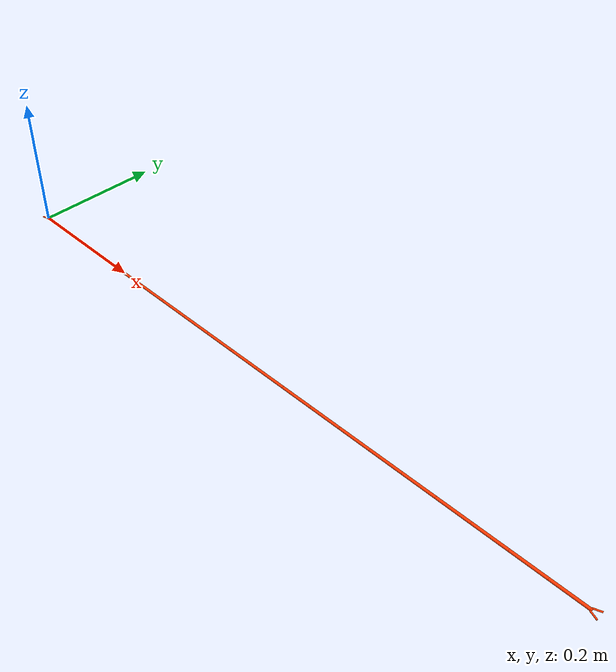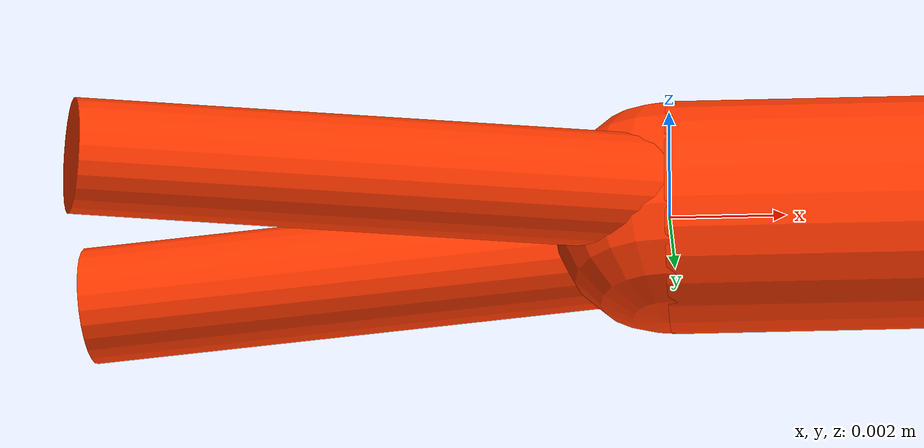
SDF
<?xml version="1.0" ?>
<!--
  THIS FILE IS AUTO-GENERATED FROM AN ERB TEMPLATE

  see instructions in 'path_to_ws/src/aic/aic_assets/scripts/cable.sdf.erb'
-->
<sdf version="1.9">
  <model name="cable">
    <link name="cable_end_0">
      <pose>0.000000 0.000000 0.000000 0.000000 -0.000000 0.000000</pose>
      <inertial>
        <pose>0.000000 0.000000 0.000000 0.000000 -0.000000 0.000000</pose>
        <mass>0.0025</mass>
        <inertia>
          <ixx>0.010000</ixx>
          <ixy>0.000000</ixy>
          <ixz>0.000000</ixz>
          <iyy>0.010000</iyy>
          <iyz>0.000000</iyz>
          <izz>0.010000</izz>
        </inertia>
      </inertial>
      <collision name="base_collision">
        <pose>0.000000 0.000000 0.000000 0.000000 0.000000 0.000000</pose>
        <geometry>
          <sphere>
            <radius>0.002</radius>
          </sphere>
        </geometry>
      </collision>
      <visual name="base_vis">
        <pose>0.000000 0.000000 0.000000 0.000000 0.000000 0.000000</pose>
        <geometry>
          <sphere>
            <radius>0.002</radius>
          </sphere>
        </geometry>
        <material>
          <diffuse>1.0 0.22 0.0</diffuse>
          <specular>0.5 0.5 0.5</specular>
          <pbr>
            <metal>
              <roughness>0.01</roughness>
              <metalness>0.01</metalness>
            </metal>
          </pbr>
        </material>
      </visual>
    </link>
    <joint name="joint_end_0" type="ball">
      <pose>0.00000 0.000000 -0.024 0.000000 0 0.000000</pose>
      <child>link_1</child>
      <parent>cable_end_0</parent>
      <axis>
        <dynamics>
          <damping>1.0</damping>
          <spring_stiffness>0.05</spring_stiffness>
        </dynamics>
      </axis>
    </joint>
    <link name="link_1">
      <pose>0.024 0.000000 0.000000 0.000000 1.570790 0.000000</pose>
      <inertial>
        <pose>0.000000 0.000000 0.000000 0.000000 -0.000000 0.000000</pose>
        <mass>0.0025</mass>
        <inertia>
          <ixx>0.010000</ixx>
          <ixy>0.000000</ixy>
          <ixz>0.000000</ixz>
          <iyy>0.010000</iyy>
          <iyz>0.000000</iyz>
          <izz>0.010000</izz>
        </inertia>
      </inertial>
      <collision name="link_1_collision">
        <pose>0.00000 0.000000 0.000000 0.000000 0 0.000000</pose>
        <geometry>
          <cylinder>
            <length>0.048</length>
            <radius>0.002</radius>
          </cylinder>
        </geometry>
      </collision>
      <visual name="link_1_vis">
        <pose>0.00000 0.000000 0.000000 0.000000 0 0.000000</pose>
        <geometry>
          <cylinder>
            <length>0.048</length>
            <radius>0.002</radius>
          </cylinder>
        </geometry>
        <material>
          <diffuse>1.0 0.22 0.0</diffuse>
          <specular>0.5 0.5 0.5</specular>
          <pbr>
            <metal>
              <roughness>0.01</roughness>
              <metalness>0.01</metalness>
            </metal>
          </pbr>
        </material>
      </visual>
      <collision name="sphere_1_collision">
        <pose>0.000000 0.000000 0.024 0.000000 -0.000000 0.000000</pose>
        <geometry>
          <sphere>
            <radius>0.002</radius>
          </sphere>
        </geometry>
      </collision>
      <visual name="sphere_1_vis">
        <pose>0.000000 0.000000 0.024 0.000000 -0.000000 0.000000</pose>
        <geometry>
          <sphere>
            <radius>0.002</radius>
          </sphere>
        </geometry>
        <material>
          <diffuse>1.0 0.22 0.0</diffuse>
          <specular>0.5 0.5 0.5</specular>
          <pbr>
            <metal>
              <roughness>0.01</roughness>
              <metalness>0.01</metalness>
            </metal>
          </pbr>
        </material>
      </visual>
    </link>
    <link name="link_2">
      <pose>0.07200000000000001 0.000000 0.000000 0.000000 1.570790 0.000000</pose>
      <inertial>
        <pose>0.000000 0.000000 0.000000 0.000000 -0.000000 0.000000</pose>
        <mass>0.0025</mass>
        <inertia>
          <ixx>0.010000</ixx>
          <ixy>0.000000</ixy>
          <ixz>0.000000</ixz>
          <iyy>0.010000</iyy>
          <iyz>0.000000</iyz>
          <izz>0.010000</izz>
        </inertia>
      </inertial>
      <collision name="link_2_collision">
        <pose>0.00000 0.000000 0.000000 0.000000 0 0.000000</pose>
        <geometry>
          <cylinder>
            <length>0.048</length>
            <radius>0.002</radius>
          </cylinder>
        </geometry>
      </collision>
      <visual name="link_2_vis">
        <pose>0.00000 0.000000 0.000000 0.000000 0 0.000000</pose>
        <geometry>
          <cylinder>
            <length>0.048</length>
            <radius>0.002</radius>
          </cylinder>
        </geometry>
        <material>
          <diffuse>1.0 0.22 0.0</diffuse>
          <specular>0.5 0.5 0.5</specular>
          <pbr>
            <metal>
              <roughness>0.01</roughness>
              <metalness>0.01</metalness>
            </metal>
          </pbr>
        </material>
      </visual>
      <collision name="sphere_2_collision">
        <pose>0.000000 0.000000 0.024 0.000000 -0.000000 0.000000</pose>
        <geometry>
          <sphere>
            <radius>0.002</radius>
          </sphere>
        </geometry>
      </collision>
      <visual name="sphere_2_vis">
        <pose>0.000000 0.000000 0.024 0.000000 -0.000000 0.000000</pose>
        <geometry>
          <sphere>
            <radius>0.002</radius>
          </sphere>
        </geometry>
        <material>
          <diffuse>1.0 0.22 0.0</diffuse>
          <specular>0.5 0.5 0.5</specular>
          <pbr>
            <metal>
              <roughness>0.01</roughness>
              <metalness>0.01</metalness>
            </metal>
          </pbr>
        </material>
      </visual>
    </link>
    <link name="link_3">
      <pose>0.12 0.000000 0.000000 0.000000 1.570790 0.000000</pose>
      <inertial>
        <pose>0.000000 0.000000 0.000000 0.000000 -0.000000 0.000000</pose>
        <mass>0.0025</mass>
        <inertia>
          <ixx>0.010000</ixx>
          <ixy>0.000000</ixy>
          <ixz>0.000000</ixz>
          <iyy>0.010000</iyy>
          <iyz>0.000000</iyz>
          <izz>0.010000</izz>
        </inertia>
      </inertial>
      <collision name="link_3_collision">
        <pose>0.00000 0.000000 0.000000 0.000000 0 0.000000</pose>
        <geometry>
          <cylinder>
            <length>0.048</length>
            <radius>0.002</radius>
          </cylinder>
        </geometry>
      </collision>
      <visual name="link_3_vis">
        <pose>0.00000 0.000000 0.000000 0.000000 0 0.000000</pose>
        <geometry>
          <cylinder>
            <length>0.048</length>
            <radius>0.002</radius>
          </cylinder>
        </geometry>
        <material>
          <diffuse>1.0 0.22 0.0</diffuse>
          <specular>0.5 0.5 0.5</specular>
          <pbr>
            <metal>
              <roughness>0.01</roughness>
              <metalness>0.01</metalness>
            </metal>
          </pbr>
        </material>
      </visual>
      <collision name="sphere_3_collision">
        <pose>0.000000 0.000000 0.024 0.000000 -0.000000 0.000000</pose>
        <geometry>
          <sphere>
            <radius>0.002</radius>
          </sphere>
        </geometry>
      </collision>
      <visual name="sphere_3_vis">
        <pose>0.000000 0.000000 0.024 0.000000 -0.000000 0.000000</pose>
        <geometry>
          <sphere>
            <radius>0.002</radius>
          </sphere>
        </geometry>
        <material>
          <diffuse>1.0 0.22 0.0</diffuse>
          <specular>0.5 0.5 0.5</specular>
          <pbr>
            <metal>
              <roughness>0.01</roughness>
              <metalness>0.01</metalness>
            </metal>
          </pbr>
        </material>
      </visual>
    </link>
    <link name="link_4">
      <pose>0.168 0.000000 0.000000 0.000000 1.570790 0.000000</pose>
      <inertial>
        <pose>0.000000 0.000000 0.000000 0.000000 -0.000000 0.000000</pose>
        <mass>0.0025</mass>
        <inertia>
          <ixx>0.010000</ixx>
          <ixy>0.000000</ixy>
          <ixz>0.000000</ixz>
          <iyy>0.010000</iyy>
          <iyz>0.000000</iyz>
          <izz>0.010000</izz>
        </inertia>
      </inertial>
      <collision name="link_4_collision">
        <pose>0.00000 0.000000 0.000000 0.000000 0 0.000000</pose>
        <geometry>
          <cylinder>
            <length>0.048</length>
            <radius>0.002</radius>
          </cylinder>
        </geometry>
      </collision>
      <visual name="link_4_vis">
        <pose>0.00000 0.000000 0.000000 0.000000 0 0.000000</pose>
        <geometry>
          <cylinder>
            <length>0.048</length>
            <radius>0.002</radius>
          </cylinder>
        </geometry>
        <material>
          <diffuse>1.0 0.22 0.0</diffuse>
          <specular>0.5 0.5 0.5</specular>
          <pbr>
            <metal>
              <roughness>0.01</roughness>
              <metalness>0.01</metalness>
            </metal>
          </pbr>
        </material>
      </visual>
      <collision name="sphere_4_collision">
        <pose>0.000000 0.000000 0.024 0.000000 -0.000000 0.000000</pose>
        <geometry>
          <sphere>
            <radius>0.002</radius>
          </sphere>
        </geometry>
      </collision>
      <visual name="sphere_4_vis">
        <pose>0.000000 0.000000 0.024 0.000000 -0.000000 0.000000</pose>
        <geometry>
          <sphere>
            <radius>0.002</radius>
          </sphere>
        </geometry>
        <material>
          <diffuse>1.0 0.22 0.0</diffuse>
          <specular>0.5 0.5 0.5</specular>
          <pbr>
            <metal>
              <roughness>0.01</roughness>
              <metalness>0.01</metalness>
            </metal>
          </pbr>
        </material>
      </visual>
    </link>
    <link name="link_5">
      <pose>0.216 0.000000 0.000000 0.000000 1.570790 0.000000</pose>
      <inertial>
        <pose>0.000000 0.000000 0.000000 0.000000 -0.000000 0.000000</pose>
        <mass>0.0025</mass>
        <inertia>
          <ixx>0.010000</ixx>
          <ixy>0.000000</ixy>
          <ixz>0.000000</ixz>
          <iyy>0.010000</iyy>
          <iyz>0.000000</iyz>
          <izz>0.010000</izz>
        </inertia>
      </inertial>
      <collision name="link_5_collision">
        <pose>0.00000 0.000000 0.000000 0.000000 0 0.000000</pose>
        <geometry>
          <cylinder>
            <length>0.048</length>
            <radius>0.002</radius>
          </cylinder>
        </geometry>
      </collision>
      <visual name="link_5_vis">
        <pose>0.00000 0.000000 0.000000 0.000000 0 0.000000</pose>
        <geometry>
          <cylinder>
            <length>0.048</length>
            <radius>0.002</radius>
          </cylinder>
        </geometry>
        <material>
          <diffuse>1.0 0.22 0.0</diffuse>
          <specular>0.5 0.5 0.5</specular>
          <pbr>
            <metal>
              <roughness>0.01</roughness>
              <metalness>0.01</metalness>
            </metal>
          </pbr>
        </material>
      </visual>
      <collision name="sphere_5_collision">
        <pose>0.000000 0.000000 0.024 0.000000 -0.000000 0.000000</pose>
        <geometry>
          <sphere>
            <radius>0.002</radius>
          </sphere>
        </geometry>
      </collision>
      <visual name="sphere_5_vis">
        <pose>0.000000 0.000000 0.024 0.000000 -0.000000 0.000000</pose>
        <geometry>
          <sphere>
            <radius>0.002</radius>
          </sphere>
        </geometry>
        <material>
          <diffuse>1.0 0.22 0.0</diffuse>
          <specular>0.5 0.5 0.5</specular>
          <pbr>
            <metal>
              <roughness>0.01</roughness>
              <metalness>0.01</metalness>
            </metal>
          </pbr>
        </material>
      </visual>
    </link>
    <link name="link_6">
      <pose>0.264 0.000000 0.000000 0.000000 1.570790 0.000000</pose>
      <inertial>
        <pose>0.000000 0.000000 0.000000 0.000000 -0.000000 0.000000</pose>
        <mass>0.0025</mass>
        <inertia>
          <ixx>0.010000</ixx>
          <ixy>0.000000</ixy>
          <ixz>0.000000</ixz>
          <iyy>0.010000</iyy>
          <iyz>0.000000</iyz>
          <izz>0.010000</izz>
        </inertia>
      </inertial>
      <collision name="link_6_collision">
        <pose>0.00000 0.000000 0.000000 0.000000 0 0.000000</pose>
        <geometry>
          <cylinder>
            <length>0.048</length>
            <radius>0.002</radius>
          </cylinder>
        </geometry>
      </collision>
      <visual name="link_6_vis">
        <pose>0.00000 0.000000 0.000000 0.000000 0 0.000000</pose>
        <geometry>
          <cylinder>
            <length>0.048</length>
            <radius>0.002</radius>
          </cylinder>
        </geometry>
        <material>
          <diffuse>1.0 0.22 0.0</diffuse>
          <specular>0.5 0.5 0.5</specular>
          <pbr>
            <metal>
              <roughness>0.01</roughness>
              <metalness>0.01</metalness>
            </metal>
          </pbr>
        </material>
      </visual>
      <collision name="sphere_6_collision">
        <pose>0.000000 0.000000 0.024 0.000000 -0.000000 0.000000</pose>
        <geometry>
          <sphere>
            <radius>0.002</radius>
          </sphere>
        </geometry>
      </collision>
      <visual name="sphere_6_vis">
        <pose>0.000000 0.000000 0.024 0.000000 -0.000000 0.000000</pose>
        <geometry>
          <sphere>
            <radius>0.002</radius>
          </sphere>
        </geometry>
        <material>
          <diffuse>1.0 0.22 0.0</diffuse>
          <specular>0.5 0.5 0.5</specular>
          <pbr>
            <metal>
              <roughness>0.01</roughness>
              <metalness>0.01</metalness>
            </metal>
          </pbr>
        </material>
      </visual>
    </link>
    <link name="link_7">
      <pose>0.31200000000000006 0.000000 0.000000 0.000000 1.570790 0.000000</pose>
      <inertial>
        <pose>0.000000 0.000000 0.000000 0.000000 -0.000000 0.000000</pose>
        <mass>0.0025</mass>
        <inertia>
          <ixx>0.010000</ixx>
          <ixy>0.000000</ixy>
          <ixz>0.000000</ixz>
          <iyy>0.010000</iyy>
          <iyz>0.000000</iyz>
          <izz>0.010000</izz>
        </inertia>
      </inertial>
      <collision name="link_7_collision">
        <pose>0.00000 0.000000 0.000000 0.000000 0 0.000000</pose>
        <geometry>
          <cylinder>
            <length>0.048</length>
            <radius>0.002</radius>
          </cylinder>
        </geometry>
      </collision>
      <visual name="link_7_vis">
        <pose>0.00000 0.000000 0.000000 0.000000 0 0.000000</pose>
        <geometry>
          <cylinder>
            <length>0.048</length>
            <radius>0.002</radius>
          </cylinder>
        </geometry>
        <material>
          <diffuse>1.0 0.22 0.0</diffuse>
          <specular>0.5 0.5 0.5</specular>
          <pbr>
            <metal>
              <roughness>0.01</roughness>
              <metalness>0.01</metalness>
            </metal>
          </pbr>
        </material>
      </visual>
      <collision name="sphere_7_collision">
        <pose>0.000000 0.000000 0.024 0.000000 -0.000000 0.000000</pose>
        <geometry>
          <sphere>
            <radius>0.002</radius>
          </sphere>
        </geometry>
      </collision>
      <visual name="sphere_7_vis">
        <pose>0.000000 0.000000 0.024 0.000000 -0.000000 0.000000</pose>
        <geometry>
          <sphere>
            <radius>0.002</radius>
          </sphere>
        </geometry>
        <material>
          <diffuse>1.0 0.22 0.0</diffuse>
          <specular>0.5 0.5 0.5</specular>
          <pbr>
            <metal>
              <roughness>0.01</roughness>
              <metalness>0.01</metalness>
            </metal>
          </pbr>
        </material>
      </visual>
    </link>
    <link name="link_8">
      <pose>0.36000000000000004 0.000000 0.000000 0.000000 1.570790 0.000000</pose>
      <inertial>
        <pose>0.000000 0.000000 0.000000 0.000000 -0.000000 0.000000</pose>
        <mass>0.0025</mass>
        <inertia>
          <ixx>0.010000</ixx>
          <ixy>0.000000</ixy>
          <ixz>0.000000</ixz>
          <iyy>0.010000</iyy>
          <iyz>0.000000</iyz>
          <izz>0.010000</izz>
        </inertia>
      </inertial>
      <collision name="link_8_collision">
        <pose>0.00000 0.000000 0.000000 0.000000 0 0.000000</pose>
        <geometry>
          <cylinder>
            <length>0.048</length>
            <radius>0.002</radius>
          </cylinder>
        </geometry>
      </collision>
      <visual name="link_8_vis">
        <pose>0.00000 0.000000 0.000000 0.000000 0 0.000000</pose>
        <geometry>
          <cylinder>
            <length>0.048</length>
            <radius>0.002</radius>
          </cylinder>
        </geometry>
        <material>
          <diffuse>1.0 0.22 0.0</diffuse>
          <specular>0.5 0.5 0.5</specular>
          <pbr>
            <metal>
              <roughness>0.01</roughness>
              <metalness>0.01</metalness>
            </metal>
          </pbr>
        </material>
      </visual>
      <collision name="sphere_8_collision">
        <pose>0.000000 0.000000 0.024 0.000000 -0.000000 0.000000</pose>
        <geometry>
          <sphere>
            <radius>0.002</radius>
          </sphere>
        </geometry>
      </collision>
      <visual name="sphere_8_vis">
        <pose>0.000000 0.000000 0.024 0.000000 -0.000000 0.000000</pose>
        <geometry>
          <sphere>
            <radius>0.002</radius>
          </sphere>
        </geometry>
        <material>
          <diffuse>1.0 0.22 0.0</diffuse>
          <specular>0.5 0.5 0.5</specular>
          <pbr>
            <metal>
              <roughness>0.01</roughness>
              <metalness>0.01</metalness>
            </metal>
          </pbr>
        </material>
      </visual>
    </link>
    <link name="link_9">
      <pose>0.40800000000000003 0.000000 0.000000 0.000000 1.570790 0.000000</pose>
      <inertial>
        <pose>0.000000 0.000000 0.000000 0.000000 -0.000000 0.000000</pose>
        <mass>0.0025</mass>
        <inertia>
          <ixx>0.010000</ixx>
          <ixy>0.000000</ixy>
          <ixz>0.000000</ixz>
          <iyy>0.010000</iyy>
          <iyz>0.000000</iyz>
          <izz>0.010000</izz>
        </inertia>
      </inertial>
      <collision name="link_9_collision">
        <pose>0.00000 0.000000 0.000000 0.000000 0 0.000000</pose>
        <geometry>
          <cylinder>
            <length>0.048</length>
            <radius>0.002</radius>
          </cylinder>
        </geometry>
      </collision>
      <visual name="link_9_vis">
        <pose>0.00000 0.000000 0.000000 0.000000 0 0.000000</pose>
        <geometry>
          <cylinder>
            <length>0.048</length>
            <radius>0.002</radius>
          </cylinder>
        </geometry>
        <material>
          <diffuse>1.0 0.22 0.0</diffuse>
          <specular>0.5 0.5 0.5</specular>
          <pbr>
            <metal>
              <roughness>0.01</roughness>
              <metalness>0.01</metalness>
            </metal>
          </pbr>
        </material>
      </visual>
      <collision name="sphere_9_collision">
        <pose>0.000000 0.000000 0.024 0.000000 -0.000000 0.000000</pose>
        <geometry>
          <sphere>
            <radius>0.002</radius>
          </sphere>
        </geometry>
      </collision>
      <visual name="sphere_9_vis">
        <pose>0.000000 0.000000 0.024 0.000000 -0.000000 0.000000</pose>
        <geometry>
          <sphere>
            <radius>0.002</radius>
          </sphere>
        </geometry>
        <material>
          <diffuse>1.0 0.22 0.0</diffuse>
          <specular>0.5 0.5 0.5</specular>
          <pbr>
            <metal>
              <roughness>0.01</roughness>
              <metalness>0.01</metalness>
            </metal>
          </pbr>
        </material>
      </visual>
    </link>
    <link name="link_10">
      <pose>0.456 0.000000 0.000000 0.000000 1.570790 0.000000</pose>
      <inertial>
        <pose>0.000000 0.000000 0.000000 0.000000 -0.000000 0.000000</pose>
        <mass>0.0025</mass>
        <inertia>
          <ixx>0.010000</ixx>
          <ixy>0.000000</ixy>
          <ixz>0.000000</ixz>
          <iyy>0.010000</iyy>
          <iyz>0.000000</iyz>
          <izz>0.010000</izz>
        </inertia>
      </inertial>
      <collision name="link_10_collision">
        <pose>0.00000 0.000000 0.000000 0.000000 0 0.000000</pose>
        <geometry>
          <cylinder>
            <length>0.048</length>
            <radius>0.002</radius>
          </cylinder>
        </geometry>
      </collision>
      <visual name="link_10_vis">
        <pose>0.00000 0.000000 0.000000 0.000000 0 0.000000</pose>
        <geometry>
          <cylinder>
            <length>0.048</length>
            <radius>0.002</radius>
          </cylinder>
        </geometry>
        <material>
          <diffuse>1.0 0.22 0.0</diffuse>
          <specular>0.5 0.5 0.5</specular>
          <pbr>
            <metal>
              <roughness>0.01</roughness>
              <metalness>0.01</metalness>
            </metal>
          </pbr>
        </material>
      </visual>
      <collision name="sphere_10_collision">
        <pose>0.000000 0.000000 0.024 0.000000 -0.000000 0.000000</pose>
        <geometry>
          <sphere>
            <radius>0.002</radius>
          </sphere>
        </geometry>
      </collision>
      <visual name="sphere_10_vis">
        <pose>0.000000 0.000000 0.024 0.000000 -0.000000 0.000000</pose>
        <geometry>
          <sphere>
            <radius>0.002</radius>
          </sphere>
        </geometry>
        <material>
          <diffuse>1.0 0.22 0.0</diffuse>
          <specular>0.5 0.5 0.5</specular>
          <pbr>
            <metal>
              <roughness>0.01</roughness>
              <metalness>0.01</metalness>
            </metal>
          </pbr>
        </material>
      </visual>
    </link>
    <link name="link_11">
      <pose>0.504 0.000000 0.000000 0.000000 1.570790 0.000000</pose>
      <inertial>
        <pose>0.000000 0.000000 0.000000 0.000000 -0.000000 0.000000</pose>
        <mass>0.0025</mass>
        <inertia>
          <ixx>0.010000</ixx>
          <ixy>0.000000</ixy>
          <ixz>0.000000</ixz>
          <iyy>0.010000</iyy>
          <iyz>0.000000</iyz>
          <izz>0.010000</izz>
        </inertia>
      </inertial>
      <collision name="link_11_collision">
        <pose>0.00000 0.000000 0.000000 0.000000 0 0.000000</pose>
        <geometry>
          <cylinder>
            <length>0.048</length>
            <radius>0.002</radius>
          </cylinder>
        </geometry>
      </collision>
      <visual name="link_11_vis">
        <pose>0.00000 0.000000 0.000000 0.000000 0 0.000000</pose>
        <geometry>
          <cylinder>
            <length>0.048</length>
            <radius>0.002</radius>
          </cylinder>
        </geometry>
        <material>
          <diffuse>1.0 0.22 0.0</diffuse>
          <specular>0.5 0.5 0.5</specular>
          <pbr>
            <metal>
              <roughness>0.01</roughness>
              <metalness>0.01</metalness>
            </metal>
          </pbr>
        </material>
      </visual>
      <collision name="sphere_11_collision">
        <pose>0.000000 0.000000 0.024 0.000000 -0.000000 0.000000</pose>
        <geometry>
          <sphere>
            <radius>0.002</radius>
          </sphere>
        </geometry>
      </collision>
      <visual name="sphere_11_vis">
        <pose>0.000000 0.000000 0.024 0.000000 -0.000000 0.000000</pose>
        <geometry>
          <sphere>
            <radius>0.002</radius>
          </sphere>
        </geometry>
        <material>
          <diffuse>1.0 0.22 0.0</diffuse>
          <specular>0.5 0.5 0.5</specular>
          <pbr>
            <metal>
              <roughness>0.01</roughness>
              <metalness>0.01</metalness>
            </metal>
          </pbr>
        </material>
      </visual>
    </link>
    <link name="link_12">
      <pose>0.552 0.000000 0.000000 0.000000 1.570790 0.000000</pose>
      <inertial>
        <pose>0.000000 0.000000 0.000000 0.000000 -0.000000 0.000000</pose>
        <mass>0.0025</mass>
        <inertia>
          <ixx>0.010000</ixx>
          <ixy>0.000000</ixy>
          <ixz>0.000000</ixz>
          <iyy>0.010000</iyy>
          <iyz>0.000000</iyz>
          <izz>0.010000</izz>
        </inertia>
      </inertial>
      <collision name="link_12_collision">
        <pose>0.00000 0.000000 0.000000 0.000000 0 0.000000</pose>
        <geometry>
          <cylinder>
            <length>0.048</length>
            <radius>0.002</radius>
          </cylinder>
        </geometry>
      </collision>
      <visual name="link_12_vis">
        <pose>0.00000 0.000000 0.000000 0.000000 0 0.000000</pose>
        <geometry>
          <cylinder>
            <length>0.048</length>
            <radius>0.002</radius>
          </cylinder>
        </geometry>
        <material>
          <diffuse>1.0 0.22 0.0</diffuse>
          <specular>0.5 0.5 0.5</specular>
          <pbr>
            <metal>
              <roughness>0.01</roughness>
              <metalness>0.01</metalness>
            </metal>
          </pbr>
        </material>
      </visual>
      <collision name="sphere_12_collision">
        <pose>0.000000 0.000000 0.024 0.000000 -0.000000 0.000000</pose>
        <geometry>
          <sphere>
            <radius>0.002</radius>
          </sphere>
        </geometry>
      </collision>
      <visual name="sphere_12_vis">
        <pose>0.000000 0.000000 0.024 0.000000 -0.000000 0.000000</pose>
        <geometry>
          <sphere>
            <radius>0.002</radius>
          </sphere>
        </geometry>
        <material>
          <diffuse>1.0 0.22 0.0</diffuse>
          <specular>0.5 0.5 0.5</specular>
          <pbr>
            <metal>
              <roughness>0.01</roughness>
              <metalness>0.01</metalness>
            </metal>
          </pbr>
        </material>
      </visual>
    </link>
    <link name="link_13">
      <pose>0.6000000000000001 0.000000 0.000000 0.000000 1.570790 0.000000</pose>
      <inertial>
        <pose>0.000000 0.000000 0.000000 0.000000 -0.000000 0.000000</pose>
        <mass>0.0025</mass>
        <inertia>
          <ixx>0.010000</ixx>
          <ixy>0.000000</ixy>
          <ixz>0.000000</ixz>
          <iyy>0.010000</iyy>
          <iyz>0.000000</iyz>
          <izz>0.010000</izz>
        </inertia>
      </inertial>
      <collision name="link_13_collision">
        <pose>0.00000 0.000000 0.000000 0.000000 0 0.000000</pose>
        <geometry>
          <cylinder>
            <length>0.048</length>
            <radius>0.002</radius>
          </cylinder>
        </geometry>
      </collision>
      <visual name="link_13_vis">
        <pose>0.00000 0.000000 0.000000 0.000000 0 0.000000</pose>
        <geometry>
          <cylinder>
            <length>0.048</length>
            <radius>0.002</radius>
          </cylinder>
        </geometry>
        <material>
          <diffuse>1.0 0.22 0.0</diffuse>
          <specular>0.5 0.5 0.5</specular>
          <pbr>
            <metal>
              <roughness>0.01</roughness>
              <metalness>0.01</metalness>
            </metal>
          </pbr>
        </material>
      </visual>
      <collision name="sphere_13_collision">
        <pose>0.000000 0.000000 0.024 0.000000 -0.000000 0.000000</pose>
        <geometry>
          <sphere>
            <radius>0.002</radius>
          </sphere>
        </geometry>
      </collision>
      <visual name="sphere_13_vis">
        <pose>0.000000 0.000000 0.024 0.000000 -0.000000 0.000000</pose>
        <geometry>
          <sphere>
            <radius>0.002</radius>
          </sphere>
        </geometry>
        <material>
          <diffuse>1.0 0.22 0.0</diffuse>
          <specular>0.5 0.5 0.5</specular>
          <pbr>
            <metal>
              <roughness>0.01</roughness>
              <metalness>0.01</metalness>
            </metal>
          </pbr>
        </material>
      </visual>
    </link>
    <link name="link_14">
      <pose>0.648 0.000000 0.000000 0.000000 1.570790 0.000000</pose>
      <inertial>
        <pose>0.000000 0.000000 0.000000 0.000000 -0.000000 0.000000</pose>
        <mass>0.0025</mass>
        <inertia>
          <ixx>0.010000</ixx>
          <ixy>0.000000</ixy>
          <ixz>0.000000</ixz>
          <iyy>0.010000</iyy>
          <iyz>0.000000</iyz>
          <izz>0.010000</izz>
        </inertia>
      </inertial>
      <collision name="link_14_collision">
        <pose>0.00000 0.000000 0.000000 0.000000 0 0.000000</pose>
        <geometry>
          <cylinder>
            <length>0.048</length>
            <radius>0.002</radius>
          </cylinder>
        </geometry>
      </collision>
      <visual name="link_14_vis">
        <pose>0.00000 0.000000 0.000000 0.000000 0 0.000000</pose>
        <geometry>
          <cylinder>
            <length>0.048</length>
            <radius>0.002</radius>
          </cylinder>
        </geometry>
        <material>
          <diffuse>1.0 0.22 0.0</diffuse>
          <specular>0.5 0.5 0.5</specular>
          <pbr>
            <metal>
              <roughness>0.01</roughness>
              <metalness>0.01</metalness>
            </metal>
          </pbr>
        </material>
      </visual>
      <collision name="sphere_14_collision">
        <pose>0.000000 0.000000 0.024 0.000000 -0.000000 0.000000</pose>
        <geometry>
          <sphere>
            <radius>0.002</radius>
          </sphere>
        </geometry>
      </collision>
      <visual name="sphere_14_vis">
        <pose>0.000000 0.000000 0.024 0.000000 -0.000000 0.000000</pose>
        <geometry>
          <sphere>
            <radius>0.002</radius>
          </sphere>
        </geometry>
        <material>
          <diffuse>1.0 0.22 0.0</diffuse>
          <specular>0.5 0.5 0.5</specular>
          <pbr>
            <metal>
              <roughness>0.01</roughness>
              <metalness>0.01</metalness>
            </metal>
          </pbr>
        </material>
      </visual>
    </link>
    <link name="link_15">
      <pose>0.6960000000000001 0.000000 0.000000 0.000000 1.570790 0.000000</pose>
      <inertial>
        <pose>0.000000 0.000000 0.000000 0.000000 -0.000000 0.000000</pose>
        <mass>0.0025</mass>
        <inertia>
          <ixx>0.010000</ixx>
          <ixy>0.000000</ixy>
          <ixz>0.000000</ixz>
          <iyy>0.010000</iyy>
          <iyz>0.000000</iyz>
          <izz>0.010000</izz>
        </inertia>
      </inertial>
      <collision name="link_15_collision">
        <pose>0.00000 0.000000 0.000000 0.000000 0 0.000000</pose>
        <geometry>
          <cylinder>
            <length>0.048</length>
            <radius>0.002</radius>
          </cylinder>
        </geometry>
      </collision>
      <visual name="link_15_vis">
        <pose>0.00000 0.000000 0.000000 0.000000 0 0.000000</pose>
        <geometry>
          <cylinder>
            <length>0.048</length>
            <radius>0.002</radius>
          </cylinder>
        </geometry>
        <material>
          <diffuse>1.0 0.22 0.0</diffuse>
          <specular>0.5 0.5 0.5</specular>
          <pbr>
            <metal>
              <roughness>0.01</roughness>
              <metalness>0.01</metalness>
            </metal>
          </pbr>
        </material>
      </visual>
      <collision name="sphere_15_collision">
        <pose>0.000000 0.000000 0.024 0.000000 -0.000000 0.000000</pose>
        <geometry>
          <sphere>
            <radius>0.002</radius>
          </sphere>
        </geometry>
      </collision>
      <visual name="sphere_15_vis">
        <pose>0.000000 0.000000 0.024 0.000000 -0.000000 0.000000</pose>
        <geometry>
          <sphere>
            <radius>0.002</radius>
          </sphere>
        </geometry>
        <material>
          <diffuse>1.0 0.22 0.0</diffuse>
          <specular>0.5 0.5 0.5</specular>
          <pbr>
            <metal>
              <roughness>0.01</roughness>
              <metalness>0.01</metalness>
            </metal>
          </pbr>
        </material>
      </visual>
    </link>
    <link name="link_16">
      <pose>0.744 0.000000 0.000000 0.000000 1.570790 0.000000</pose>
      <inertial>
        <pose>0.000000 0.000000 0.000000 0.000000 -0.000000 0.000000</pose>
        <mass>0.0025</mass>
        <inertia>
          <ixx>0.010000</ixx>
          <ixy>0.000000</ixy>
          <ixz>0.000000</ixz>
          <iyy>0.010000</iyy>
          <iyz>0.000000</iyz>
          <izz>0.010000</izz>
        </inertia>
      </inertial>
      <collision name="link_16_collision">
        <pose>0.00000 0.000000 0.000000 0.000000 0 0.000000</pose>
        <geometry>
          <cylinder>
            <length>0.048</length>
            <radius>0.002</radius>
          </cylinder>
        </geometry>
      </collision>
      <visual name="link_16_vis">
        <pose>0.00000 0.000000 0.000000 0.000000 0 0.000000</pose>
        <geometry>
          <cylinder>
            <length>0.048</length>
            <radius>0.002</radius>
          </cylinder>
        </geometry>
        <material>
          <diffuse>1.0 0.22 0.0</diffuse>
          <specular>0.5 0.5 0.5</specular>
          <pbr>
            <metal>
              <roughness>0.01</roughness>
              <metalness>0.01</metalness>
            </metal>
          </pbr>
        </material>
      </visual>
      <collision name="sphere_16_collision">
        <pose>0.000000 0.000000 0.024 0.000000 -0.000000 0.000000</pose>
        <geometry>
          <sphere>
            <radius>0.002</radius>
          </sphere>
        </geometry>
      </collision>
      <visual name="sphere_16_vis">
        <pose>0.000000 0.000000 0.024 0.000000 -0.000000 0.000000</pose>
        <geometry>
          <sphere>
            <radius>0.002</radius>
          </sphere>
        </geometry>
        <material>
          <diffuse>1.0 0.22 0.0</diffuse>
          <specular>0.5 0.5 0.5</specular>
          <pbr>
            <metal>
              <roughness>0.01</roughness>
              <metalness>0.01</metalness>
            </metal>
          </pbr>
        </material>
      </visual>
    </link>
    <link name="link_17">
      <pose>0.792 0.000000 0.000000 0.000000 1.570790 0.000000</pose>
      <inertial>
        <pose>0.000000 0.000000 0.000000 0.000000 -0.000000 0.000000</pose>
        <mass>0.0025</mass>
        <inertia>
          <ixx>0.010000</ixx>
          <ixy>0.000000</ixy>
          <ixz>0.000000</ixz>
          <iyy>0.010000</iyy>
          <iyz>0.000000</iyz>
          <izz>0.010000</izz>
        </inertia>
      </inertial>
      <collision name="link_17_collision">
        <pose>0.00000 0.000000 0.000000 0.000000 0 0.000000</pose>
        <geometry>
          <cylinder>
            <length>0.048</length>
            <radius>0.002</radius>
          </cylinder>
        </geometry>
      </collision>
      <visual name="link_17_vis">
        <pose>0.00000 0.000000 0.000000 0.000000 0 0.000000</pose>
        <geometry>
          <cylinder>
            <length>0.048</length>
            <radius>0.002</radius>
          </cylinder>
        </geometry>
        <material>
          <diffuse>1.0 0.22 0.0</diffuse>
          <specular>0.5 0.5 0.5</specular>
          <pbr>
            <metal>
              <roughness>0.01</roughness>
              <metalness>0.01</metalness>
            </metal>
          </pbr>
        </material>
      </visual>
      <collision name="sphere_17_collision">
        <pose>0.000000 0.000000 0.024 0.000000 -0.000000 0.000000</pose>
        <geometry>
          <sphere>
            <radius>0.002</radius>
          </sphere>
        </geometry>
      </collision>
      <visual name="sphere_17_vis">
        <pose>0.000000 0.000000 0.024 0.000000 -0.000000 0.000000</pose>
        <geometry>
          <sphere>
            <radius>0.002</radius>
          </sphere>
        </geometry>
        <material>
          <diffuse>1.0 0.22 0.0</diffuse>
          <specular>0.5 0.5 0.5</specular>
          <pbr>
            <metal>
              <roughness>0.01</roughness>
              <metalness>0.01</metalness>
            </metal>
          </pbr>
        </material>
      </visual>
    </link>
    <link name="link_18">
      <pose>0.8400000000000001 0.000000 0.000000 0.000000 1.570790 0.000000</pose>
      <inertial>
        <pose>0.000000 0.000000 0.000000 0.000000 -0.000000 0.000000</pose>
        <mass>0.0025</mass>
        <inertia>
          <ixx>0.010000</ixx>
          <ixy>0.000000</ixy>
          <ixz>0.000000</ixz>
          <iyy>0.010000</iyy>
          <iyz>0.000000</iyz>
          <izz>0.010000</izz>
        </inertia>
      </inertial>
      <collision name="link_18_collision">
        <pose>0.00000 0.000000 0.000000 0.000000 0 0.000000</pose>
        <geometry>
          <cylinder>
            <length>0.048</length>
            <radius>0.002</radius>
          </cylinder>
        </geometry>
      </collision>
      <visual name="link_18_vis">
        <pose>0.00000 0.000000 0.000000 0.000000 0 0.000000</pose>
        <geometry>
          <cylinder>
            <length>0.048</length>
            <radius>0.002</radius>
          </cylinder>
        </geometry>
        <material>
          <diffuse>1.0 0.22 0.0</diffuse>
          <specular>0.5 0.5 0.5</specular>
          <pbr>
            <metal>
              <roughness>0.01</roughness>
              <metalness>0.01</metalness>
            </metal>
          </pbr>
        </material>
      </visual>
      <collision name="sphere_18_collision">
        <pose>0.000000 0.000000 0.024 0.000000 -0.000000 0.000000</pose>
        <geometry>
          <sphere>
            <radius>0.002</radius>
          </sphere>
        </geometry>
      </collision>
      <visual name="sphere_18_vis">
        <pose>0.000000 0.000000 0.024 0.000000 -0.000000 0.000000</pose>
        <geometry>
          <sphere>
            <radius>0.002</radius>
          </sphere>
        </geometry>
        <material>
          <diffuse>1.0 0.22 0.0</diffuse>
          <specular>0.5 0.5 0.5</specular>
          <pbr>
            <metal>
              <roughness>0.01</roughness>
              <metalness>0.01</metalness>
            </metal>
          </pbr>
        </material>
      </visual>
    </link>
    <link name="link_19">
      <pose>0.888 0.000000 0.000000 0.000000 1.570790 0.000000</pose>
      <inertial>
        <pose>0.000000 0.000000 0.000000 0.000000 -0.000000 0.000000</pose>
        <mass>0.0025</mass>
        <inertia>
          <ixx>0.010000</ixx>
          <ixy>0.000000</ixy>
          <ixz>0.000000</ixz>
          <iyy>0.010000</iyy>
          <iyz>0.000000</iyz>
          <izz>0.010000</izz>
        </inertia>
      </inertial>
      <collision name="link_19_collision">
        <pose>0.00000 0.000000 0.000000 0.000000 0 0.000000</pose>
        <geometry>
          <cylinder>
            <length>0.048</length>
            <radius>0.002</radius>
          </cylinder>
        </geometry>
      </collision>
      <visual name="link_19_vis">
        <pose>0.00000 0.000000 0.000000 0.000000 0 0.000000</pose>
        <geometry>
          <cylinder>
            <length>0.048</length>
            <radius>0.002</radius>
          </cylinder>
        </geometry>
        <material>
          <diffuse>1.0 0.22 0.0</diffuse>
          <specular>0.5 0.5 0.5</specular>
          <pbr>
            <metal>
              <roughness>0.01</roughness>
              <metalness>0.01</metalness>
            </metal>
          </pbr>
        </material>
      </visual>
      <collision name="sphere_19_collision">
        <pose>0.000000 0.000000 0.024 0.000000 -0.000000 0.000000</pose>
        <geometry>
          <sphere>
            <radius>0.002</radius>
          </sphere>
        </geometry>
      </collision>
      <visual name="sphere_19_vis">
        <pose>0.000000 0.000000 0.024 0.000000 -0.000000 0.000000</pose>
        <geometry>
          <sphere>
            <radius>0.002</radius>
          </sphere>
        </geometry>
        <material>
          <diffuse>1.0 0.22 0.0</diffuse>
          <specular>0.5 0.5 0.5</specular>
          <pbr>
            <metal>
              <roughness>0.01</roughness>
              <metalness>0.01</metalness>
            </metal>
          </pbr>
        </material>
      </visual>
    </link>
    <link name="link_20">
      <pose>0.936 0.000000 0.000000 0.000000 1.570790 0.000000</pose>
      <inertial>
        <pose>0.000000 0.000000 0.000000 0.000000 -0.000000 0.000000</pose>
        <mass>0.0025</mass>
        <inertia>
          <ixx>0.010000</ixx>
          <ixy>0.000000</ixy>
          <ixz>0.000000</ixz>
          <iyy>0.010000</iyy>
          <iyz>0.000000</iyz>
          <izz>0.010000</izz>
        </inertia>
      </inertial>
      <collision name="link_20_collision">
        <pose>0.00000 0.000000 0.000000 0.000000 0 0.000000</pose>
        <geometry>
          <cylinder>
            <length>0.048</length>
            <radius>0.002</radius>
          </cylinder>
        </geometry>
      </collision>
      <visual name="link_20_vis">
        <pose>0.00000 0.000000 0.000000 0.000000 0 0.000000</pose>
        <geometry>
          <cylinder>
            <length>0.048</length>
            <radius>0.002</radius>
          </cylinder>
        </geometry>
        <material>
          <diffuse>1.0 0.22 0.0</diffuse>
          <specular>0.5 0.5 0.5</specular>
          <pbr>
            <metal>
              <roughness>0.01</roughness>
              <metalness>0.01</metalness>
            </metal>
          </pbr>
        </material>
      </visual>
      <collision name="sphere_20_collision">
        <pose>0.000000 0.000000 0.024 0.000000 -0.000000 0.000000</pose>
        <geometry>
          <sphere>
            <radius>0.002</radius>
          </sphere>
        </geometry>
      </collision>
      <visual name="sphere_20_vis">
        <pose>0.000000 0.000000 0.024 0.000000 -0.000000 0.000000</pose>
        <geometry>
          <sphere>
            <radius>0.002</radius>
          </sphere>
        </geometry>
        <material>
          <diffuse>1.0 0.22 0.0</diffuse>
          <specular>0.5 0.5 0.5</specular>
          <pbr>
            <metal>
              <roughness>0.01</roughness>
              <metalness>0.01</metalness>
            </metal>
          </pbr>
        </material>
      </visual>
    </link>
    <joint name="joint_1" type="ball">
      <pose>0.00000 0.000000 -0.024 0.000000 0 0.000000</pose>
      <parent>link_1</parent>
      <child>link_2</child>
      <axis>
        <dynamics>
          <damping>1.0</damping>
          <spring_stiffness>0.05</spring_stiffness>
        </dynamics>
      </axis>
    </joint>
    <joint name="joint_2" type="ball">
      <pose>0.00000 0.000000 -0.024 0.000000 0 0.000000</pose>
      <parent>link_2</parent>
      <child>link_3</child>
      <axis>
        <dynamics>
          <damping>1.0</damping>
          <spring_stiffness>0.05</spring_stiffness>
        </dynamics>
      </axis>
    </joint>
    <joint name="joint_3" type="ball">
      <pose>0.00000 0.000000 -0.024 0.000000 0 0.000000</pose>
      <parent>link_3</parent>
      <child>link_4</child>
      <axis>
        <dynamics>
          <damping>1.0</damping>
          <spring_stiffness>0.05</spring_stiffness>
        </dynamics>
      </axis>
    </joint>
    <joint name="joint_4" type="ball">
      <pose>0.00000 0.000000 -0.024 0.000000 0 0.000000</pose>
      <parent>link_4</parent>
      <child>link_5</child>
      <axis>
        <dynamics>
          <damping>1.0</damping>
          <spring_stiffness>0.05</spring_stiffness>
        </dynamics>
      </axis>
    </joint>
    <joint name="joint_5" type="ball">
      <pose>0.00000 0.000000 -0.024 0.000000 0 0.000000</pose>
      <parent>link_5</parent>
      <child>link_6</child>
      <axis>
        <dynamics>
          <damping>1.0</damping>
          <spring_stiffness>0.05</spring_stiffness>
        </dynamics>
      </axis>
    </joint>
    <joint name="joint_6" type="ball">
      <pose>0.00000 0.000000 -0.024 0.000000 0 0.000000</pose>
      <parent>link_6</parent>
      <child>link_7</child>
      <axis>
        <dynamics>
          <damping>1.0</damping>
          <spring_stiffness>0.05</spring_stiffness>
        </dynamics>
      </axis>
    </joint>
    <joint name="joint_7" type="ball">
      <pose>0.00000 0.000000 -0.024 0.000000 0 0.000000</pose>
      <parent>link_7</parent>
      <child>link_8</child>
      <axis>
        <dynamics>
          <damping>1.0</damping>
          <spring_stiffness>0.05</spring_stiffness>
        </dynamics>
      </axis>
    </joint>
    <joint name="joint_8" type="ball">
      <pose>0.00000 0.000000 -0.024 0.000000 0 0.000000</pose>
      <parent>link_8</parent>
      <child>link_9</child>
      <axis>
        <dynamics>
          <damping>1.0</damping>
          <spring_stiffness>0.05</spring_stiffness>
        </dynamics>
      </axis>
    </joint>
    <joint name="joint_9" type="ball">
      <pose>0.00000 0.000000 -0.024 0.000000 0 0.000000</pose>
      <parent>link_9</parent>
      <child>link_10</child>
      <axis>
        <dynamics>
          <damping>1.0</damping>
          <spring_stiffness>0.05</spring_stiffness>
        </dynamics>
      </axis>
    </joint>
    <joint name="joint_10" type="ball">
      <pose>0.00000 0.000000 -0.024 0.000000 0 0.000000</pose>
      <parent>link_10</parent>
      <child>link_11</child>
      <axis>
        <dynamics>
          <damping>1.0</damping>
          <spring_stiffness>0.05</spring_stiffness>
        </dynamics>
      </axis>
    </joint>
    <joint name="joint_11" type="ball">
      <pose>0.00000 0.000000 -0.024 0.000000 0 0.000000</pose>
      <parent>link_11</parent>
      <child>link_12</child>
      <axis>
        <dynamics>
          <damping>1.0</damping>
          <spring_stiffness>0.05</spring_stiffness>
        </dynamics>
      </axis>
    </joint>
    <joint name="joint_12" type="ball">
      <pose>0.00000 0.000000 -0.024 0.000000 0 0.000000</pose>
      <parent>link_12</parent>
      <child>link_13</child>
      <axis>
        <dynamics>
          <damping>1.0</damping>
          <spring_stiffness>0.05</spring_stiffness>
        </dynamics>
      </axis>
    </joint>
    <joint name="joint_13" type="ball">
      <pose>0.00000 0.000000 -0.024 0.000000 0 0.000000</pose>
      <parent>link_13</parent>
      <child>link_14</child>
      <axis>
        <dynamics>
          <damping>1.0</damping>
          <spring_stiffness>0.05</spring_stiffness>
        </dynamics>
      </axis>
    </joint>
    <joint name="joint_14" type="ball">
      <pose>0.00000 0.000000 -0.024 0.000000 0 0.000000</pose>
      <parent>link_14</parent>
      <child>link_15</child>
      <axis>
        <dynamics>
          <damping>1.0</damping>
          <spring_stiffness>0.05</spring_stiffness>
        </dynamics>
      </axis>
    </joint>
    <joint name="joint_15" type="ball">
      <pose>0.00000 0.000000 -0.024 0.000000 0 0.000000</pose>
      <parent>link_15</parent>
      <child>link_16</child>
      <axis>
        <dynamics>
          <damping>1.0</damping>
          <spring_stiffness>0.05</spring_stiffness>
        </dynamics>
      </axis>
    </joint>
    <joint name="joint_16" type="ball">
      <pose>0.00000 0.000000 -0.024 0.000000 0 0.000000</pose>
      <parent>link_16</parent>
      <child>link_17</child>
      <axis>
        <dynamics>
          <damping>1.0</damping>
          <spring_stiffness>0.05</spring_stiffness>
        </dynamics>
      </axis>
    </joint>
    <joint name="joint_17" type="ball">
      <pose>0.00000 0.000000 -0.024 0.000000 0 0.000000</pose>
      <parent>link_17</parent>
      <child>link_18</child>
      <axis>
        <dynamics>
          <damping>1.0</damping>
          <spring_stiffness>0.05</spring_stiffness>
        </dynamics>
      </axis>
    </joint>
    <joint name="joint_18" type="ball">
      <pose>0.00000 0.000000 -0.024 0.000000 0 0.000000</pose>
      <parent>link_18</parent>
      <child>link_19</child>
      <axis>
        <dynamics>
          <damping>1.0</damping>
          <spring_stiffness>0.05</spring_stiffness>
        </dynamics>
      </axis>
    </joint>
    <joint name="joint_19" type="ball">
      <pose>0.00000 0.000000 -0.024 0.000000 0 0.000000</pose>
      <parent>link_19</parent>
      <child>link_20</child>
      <axis>
        <dynamics>
          <damping>1.0</damping>
          <spring_stiffness>0.05</spring_stiffness>
        </dynamics>
      </axis>
    </joint>
    <frame name="cable_mount_base">
      <pose>0 0 0 0 0 0</pose>
    </frame>
    <frame name="cable_mount_end">
      <pose>0.96 0 0 0 0 0</pose>
    </frame>
    <link name="cable_connection_0">
      <inertial>
        <pose>0.000000 0.000000 0.000000 0.000000 -0.000000 0.000000</pose>
        <mass>0.01</mass>
        <inertia>
          <ixx>0.010000</ixx>
          <ixy>0.000000</ixy>
          <ixz>0.000000</ixz>
          <iyy>0.010000</iyy>
          <iyz>0.000000</iyz>
          <izz>0.010000</izz>
        </inertia>
      </inertial>
      <pose relative_to="cable_mount_base">0 0 0 0 0 0</pose>
      <collision name="collision_0">
        <pose>-0.005099019513592785 0.002 0 0.19739555984988078 1.57079 0</pose>
        <geometry>
          <cylinder>
            <radius>0.001</radius>
            <length>0.01019803902718557</length>
          </cylinder>
        </geometry>
      </collision>
      <visual name="visual_0">
        <pose>-0.005099019513592785 0.002 0 0.19739555984988078 1.57079 0</pose>
        <geometry>
          <cylinder>
            <radius>0.001</radius>
            <length>0.01019803902718557</length>
          </cylinder>
        </geometry>
        <material>
          <diffuse>1.0 0.22 0.0</diffuse>
          <specular>0.5 0.5 0.5</specular>
          <pbr>
            <metal>
              <roughness>0.01</roughness>
              <metalness>0.01</metalness>
            </metal>
          </pbr>
        </material>
      </visual>
      <collision name="collision_1">
        <pose>-0.005099019513592785 -0.002 0 -0.19739555984988078 1.57079 0</pose>
        <geometry>
          <cylinder>
            <radius>0.001</radius>
            <length>0.01019803902718557</length>
          </cylinder>
        </geometry>
      </collision>
      <visual name="visual_1">
        <pose>-0.005099019513592785 -0.002 0 -0.19739555984988078 1.57079 0</pose>
        <geometry>
          <cylinder>
            <radius>0.001</radius>
            <length>0.01019803902718557</length>
          </cylinder>
        </geometry>
        <material>
          <diffuse>1.0 0.22 0.0</diffuse>
          <specular>0.5 0.5 0.5</specular>
          <pbr>
            <metal>
              <roughness>0.01</roughness>
              <metalness>0.01</metalness>
            </metal>
          </pbr>
        </material>
      </visual>
    </link>
    <link name="cable_connection_1">
      <inertial>
        <pose>0.000000 0.000000 0.000000 0.000000 -0.000000 0.000000</pose>
        <mass>0.01</mass>
        <inertia>
          <ixx>0.010000</ixx>
          <ixy>0.000000</ixy>
          <ixz>0.000000</ixz>
          <iyy>0.010000</iyy>
          <iyz>0.000000</iyz>
          <izz>0.010000</izz>
        </inertia>
      </inertial>
      <pose relative_to="cable_mount_end">0 0 0 0 0 0</pose>
      <collision name="collision_0">
        <pose>0.005385164807134504 -0.004 0 0.3805063771123649 1.57079 0</pose>
        <geometry>
          <cylinder>
            <radius>0.001</radius>
            <length>0.010770329614269008</length>
          </cylinder>
        </geometry>
      </collision>
      <visual name="visual_0">
        <pose>0.005385164807134504 -0.004 0 0.3805063771123649 1.57079 0</pose>
        <geometry>
          <cylinder>
            <radius>0.001</radius>
            <length>0.010770329614269008</length>
          </cylinder>
        </geometry>
        <material>
          <diffuse>1.0 0.22 0.0</diffuse>
          <specular>0.5 0.5 0.5</specular>
          <pbr>
            <metal>
              <roughness>0.01</roughness>
              <metalness>0.01</metalness>
            </metal>
          </pbr>
        </material>
      </visual>
      <collision name="collision_1">
        <pose>0.005385164807134504 0.004 0 -0.3805063771123649 1.57079 0</pose>
        <geometry>
          <cylinder>
            <radius>0.001</radius>
            <length>0.010770329614269008</length>
          </cylinder>
        </geometry>
      </collision>
      <visual name="visual_1">
        <pose>0.005385164807134504 0.004 0 -0.3805063771123649 1.57079 0</pose>
        <geometry>
          <cylinder>
            <radius>0.001</radius>
            <length>0.010770329614269008</length>
          </cylinder>
        </geometry>
        <material>
          <diffuse>1.0 0.22 0.0</diffuse>
          <specular>0.5 0.5 0.5</specular>
          <pbr>
            <metal>
              <roughness>0.01</roughness>
              <metalness>0.01</metalness>
            </metal>
          </pbr>
        </material>
      </visual>
    </link>
    <joint name="joint_connection_end_0" type="ball">
      <pose>0.00000 0.000000 0 0.000000 0 0.000000</pose>
      <parent>cable_end_0</parent>
      <child>cable_connection_0</child>
      <axis>
        <dynamics>
          <damping>1.0</damping>
          <spring_stiffness>0.05</spring_stiffness>
        </dynamics>
      </axis>
    </joint>
    <joint name="joint_connection_end_1" type="ball">
      <pose>0.00000 0.000000 0 0.000000 0 0.000000</pose>
      <parent>link_20</parent>
      <child>cable_connection_1</child>
      <axis>
        <dynamics>
          <damping>1.0</damping>
          <spring_stiffness>0.05</spring_stiffness>
        </dynamics>
      </axis>
    </joint>
  </model>
</sdf>
